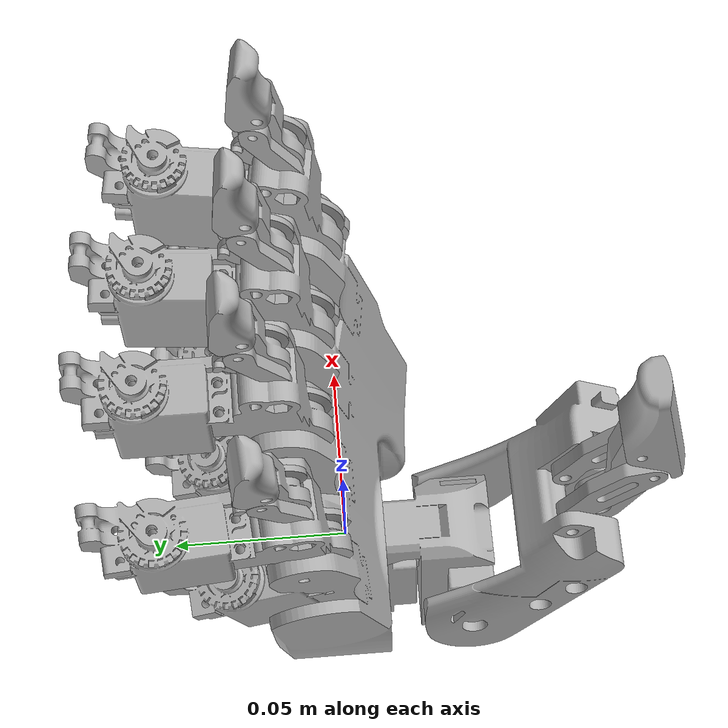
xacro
<?xml version="1.0" ?>
<robot name="urdf_v2_multibody" xmlns:xacro="http://www.ros.org/wiki/xacro">

<xacro:include filename="$(find urdf_v2_multibody_description)/urdf/materials.xacro" />
<xacro:include filename="$(find urdf_v2_multibody_description)/urdf/urdf_v2_multibody.trans" />
<xacro:include filename="$(find urdf_v2_multibody_description)/urdf/urdf_v2_multibody.gazebo" />
<link name="base_link">
  <inertial>
    <origin xyz="0.0016474099562521773 0.007710038643379074 0.06569064223044598" rpy="0 0 0"/>
    <mass value="0.3255498695984158"/>
    <inertia ixx="0.000354" iyy="0.000561" izz="0.000292" ixy="1.4e-05" iyz="-6.1e-05" ixz="1.6e-05"/>
  </inertial>
  <visual>
    <origin xyz="0 0 0" rpy="0 0 0"/>
    <geometry>
      <mesh filename="package://urdf_v2_multibody_description/meshes/base_link.stl" scale="0.001 0.001 0.001"/>
    </geometry>
    <material name="silver"/>
  </visual>
  <collision>
    <origin xyz="0 0 0" rpy="0 0 0"/>
    <geometry>
      <mesh filename="package://urdf_v2_multibody_description/meshes/base_link.stl" scale="0.001 0.001 0.001"/>
    </geometry>
  </collision>
</link>

<link name="Component18_1">
  <inertial>
    <origin xyz="0.00205644773644063 -0.035759461366122305 0.0009377444804476651" rpy="0 0 0"/>
    <mass value="0.03275756090109329"/>
    <inertia ixx="1.2e-05" iyy="6e-06" izz="1e-05" ixy="0.0" iyz="-2e-06" ixz="-0.0"/>
  </inertial>
  <visual>
    <origin xyz="0.02 -0.01402 -0.037074" rpy="0 0 0"/>
    <geometry>
      <mesh filename="package://urdf_v2_multibody_description/meshes/Component18_1.stl" scale="0.001 0.001 0.001"/>
    </geometry>
    <material name="silver"/>
  </visual>
  <collision>
    <origin xyz="0.02 -0.01402 -0.037074" rpy="0 0 0"/>
    <geometry>
      <mesh filename="package://urdf_v2_multibody_description/meshes/Component18_1.stl" scale="0.001 0.001 0.001"/>
    </geometry>
  </collision>
</link>

<link name="Component19_1">
  <inertial>
    <origin xyz="0.021021842981152637 -0.02024905051578764 0.013915914353245067" rpy="0 0 0"/>
    <mass value="0.042376196509499364"/>
    <inertia ixx="1.3e-05" iyy="1.8e-05" izz="1.8e-05" ixy="3e-06" iyz="5e-06" ixz="-1e-06"/>
  </inertial>
  <visual>
    <origin xyz="0.033236 0.03308 -0.039408" rpy="0 0 0"/>
    <geometry>
      <mesh filename="package://urdf_v2_multibody_description/meshes/Component19_1.stl" scale="0.001 0.001 0.001"/>
    </geometry>
    <material name="silver"/>
  </visual>
  <collision>
    <origin xyz="0.033236 0.03308 -0.039408" rpy="0 0 0"/>
    <geometry>
      <mesh filename="package://urdf_v2_multibody_description/meshes/Component19_1.stl" scale="0.001 0.001 0.001"/>
    </geometry>
  </collision>
</link>

<link name="Component20_1">
  <inertial>
    <origin xyz="0.003972829402101651 -0.010128401948321923 0.00957536831503221" rpy="0 0 0"/>
    <mass value="0.0012538487228303686"/>
    <inertia ixx="1e-06" iyy="1e-06" izz="1e-06" ixy="0.0" iyz="0.0" ixz="-0.0"/>
  </inertial>
  <visual>
    <origin xyz="0.022933 0.059187 -0.072095" rpy="0 0 0"/>
    <geometry>
      <mesh filename="package://urdf_v2_multibody_description/meshes/Component20_1.stl" scale="0.001 0.001 0.001"/>
    </geometry>
    <material name="silver"/>
  </visual>
  <collision>
    <origin xyz="0.022933 0.059187 -0.072095" rpy="0 0 0"/>
    <geometry>
      <mesh filename="package://urdf_v2_multibody_description/meshes/Component20_1.stl" scale="0.001 0.001 0.001"/>
    </geometry>
  </collision>
</link>

<link name="Component22_1">
  <inertial>
    <origin xyz="-0.00043298154854211086 -0.01032217531305036 0.010789839877586305" rpy="0 0 0"/>
    <mass value="0.0011896726478674796"/>
    <inertia ixx="1e-06" iyy="1e-06" izz="1e-06" ixy="0.0" iyz="0.0" ixz="-0.0"/>
  </inertial>
  <visual>
    <origin xyz="0.006812 0.059187 -0.069252" rpy="0 0 0"/>
    <geometry>
      <mesh filename="package://urdf_v2_multibody_description/meshes/Component22_1.stl" scale="0.001 0.001 0.001"/>
    </geometry>
    <material name="silver"/>
  </visual>
  <collision>
    <origin xyz="0.006812 0.059187 -0.069252" rpy="0 0 0"/>
    <geometry>
      <mesh filename="package://urdf_v2_multibody_description/meshes/Component22_1.stl" scale="0.001 0.001 0.001"/>
    </geometry>
  </collision>
</link>

<link name="Component16_1">
  <inertial>
    <origin xyz="-0.008061059676977358 0.01638074973575073 0.017589685642908456" rpy="0 0 0"/>
    <mass value="0.026790037080618938"/>
    <inertia ixx="1e-05" iyy="4e-06" izz="7e-06" ixy="1e-06" iyz="-1e-06" ixz="0.0"/>
  </inertial>
  <visual>
    <origin xyz="0.03462 -0.01249 -0.124159" rpy="0 0 0"/>
    <geometry>
      <mesh filename="package://urdf_v2_multibody_description/meshes/Component16_1.stl" scale="0.001 0.001 0.001"/>
    </geometry>
    <material name="silver"/>
  </visual>
  <collision>
    <origin xyz="0.03462 -0.01249 -0.124159" rpy="0 0 0"/>
    <geometry>
      <mesh filename="package://urdf_v2_multibody_description/meshes/Component16_1.stl" scale="0.001 0.001 0.001"/>
    </geometry>
  </collision>
</link>

<link name="Component2_1">
  <inertial>
    <origin xyz="0.000462619542790553 0.004461726896375182 0.010938978748813583" rpy="0 0 0"/>
    <mass value="0.0005553551164993653"/>
    <inertia ixx="1e-06" iyy="1e-06" izz="1e-06" ixy="0.0" iyz="-0.0" ixz="0.0"/>
  </inertial>
  <visual>
    <origin xyz="0.047401 -0.011385 -0.160863" rpy="0 0 0"/>
    <geometry>
      <mesh filename="package://urdf_v2_multibody_description/meshes/Component2_1.stl" scale="0.001 0.001 0.001"/>
    </geometry>
    <material name="silver"/>
  </visual>
  <collision>
    <origin xyz="0.047401 -0.011385 -0.160863" rpy="0 0 0"/>
    <geometry>
      <mesh filename="package://urdf_v2_multibody_description/meshes/Component2_1.stl" scale="0.001 0.001 0.001"/>
    </geometry>
  </collision>
</link>

<link name="Component3_1">
  <inertial>
    <origin xyz="-0.0044275618766101005 -0.000971590077156876 0.0044567427901544" rpy="0 0 0"/>
    <mass value="0.0021016630700529814"/>
    <inertia ixx="1e-06" iyy="1e-06" izz="1e-06" ixy="-0.0" iyz="-0.0" ixz="0.0"/>
  </inertial>
  <visual>
    <origin xyz="0.03578 -0.017984 -0.163813" rpy="0 0 0"/>
    <geometry>
      <mesh filename="package://urdf_v2_multibody_description/meshes/Component3_1.stl" scale="0.001 0.001 0.001"/>
    </geometry>
    <material name="silver"/>
  </visual>
  <collision>
    <origin xyz="0.03578 -0.017984 -0.163813" rpy="0 0 0"/>
    <geometry>
      <mesh filename="package://urdf_v2_multibody_description/meshes/Component3_1.stl" scale="0.001 0.001 0.001"/>
    </geometry>
  </collision>
</link>

<link name="Component1_1">
  <inertial>
    <origin xyz="-0.0026582242355176547 0.0027212087586729085 0.005344973967817412" rpy="0 0 0"/>
    <mass value="0.0023320871491061606"/>
    <inertia ixx="1e-06" iyy="1e-06" izz="1e-06" ixy="-0.0" iyz="-0.0" ixz="0.0"/>
  </inertial>
  <visual>
    <origin xyz="0.042678 -0.018402 -0.188385" rpy="0 0 0"/>
    <geometry>
      <mesh filename="package://urdf_v2_multibody_description/meshes/Component1_1.stl" scale="0.001 0.001 0.001"/>
    </geometry>
    <material name="silver"/>
  </visual>
  <collision>
    <origin xyz="0.042678 -0.018402 -0.188385" rpy="0 0 0"/>
    <geometry>
      <mesh filename="package://urdf_v2_multibody_description/meshes/Component1_1.stl" scale="0.001 0.001 0.001"/>
    </geometry>
  </collision>
</link>

<link name="Component15_1">
  <inertial>
    <origin xyz="-0.005463065418136619 0.01698982682823835 0.018005199450024434" rpy="0 0 0"/>
    <mass value="0.02679000292225181"/>
    <inertia ixx="1e-05" iyy="4e-06" izz="7e-06" ixy="-0.0" iyz="-1e-06" ixz="0.0"/>
  </inertial>
  <visual>
    <origin xyz="0.005159 -0.014269 -0.128417" rpy="0 0 0"/>
    <geometry>
      <mesh filename="package://urdf_v2_multibody_description/meshes/Component15_1.stl" scale="0.001 0.001 0.001"/>
    </geometry>
    <material name="silver"/>
  </visual>
  <collision>
    <origin xyz="0.005159 -0.014269 -0.128417" rpy="0 0 0"/>
    <geometry>
      <mesh filename="package://urdf_v2_multibody_description/meshes/Component15_1.stl" scale="0.001 0.001 0.001"/>
    </geometry>
  </collision>
</link>

<link name="Component5_1">
  <inertial>
    <origin xyz="0.0015734159091422076 0.004407373831162737 0.010857840276740471" rpy="0 0 0"/>
    <mass value="0.0005553551430431107"/>
    <inertia ixx="1e-06" iyy="1e-06" izz="1e-06" ixy="-0.0" iyz="-0.0" ixz="-0.0"/>
  </inertial>
  <visual>
    <origin xyz="0.015459 -0.014222 -0.165909" rpy="0 0 0"/>
    <geometry>
      <mesh filename="package://urdf_v2_multibody_description/meshes/Component5_1.stl" scale="0.001 0.001 0.001"/>
    </geometry>
    <material name="silver"/>
  </visual>
  <collision>
    <origin xyz="0.015459 -0.014222 -0.165909" rpy="0 0 0"/>
    <geometry>
      <mesh filename="package://urdf_v2_multibody_description/meshes/Component5_1.stl" scale="0.001 0.001 0.001"/>
    </geometry>
  </collision>
</link>

<link name="Component6_1">
  <inertial>
    <origin xyz="-0.0041785915393025876 -0.0006012877139288213 0.004751629271805224" rpy="0 0 0"/>
    <mass value="0.002101669059174703"/>
    <inertia ixx="1e-06" iyy="1e-06" izz="1e-06" ixy="-0.0" iyz="-0.0" ixz="0.0"/>
  </inertial>
  <visual>
    <origin xyz="0.003159 -0.019835 -0.168028" rpy="0 0 0"/>
    <geometry>
      <mesh filename="package://urdf_v2_multibody_description/meshes/Component6_1.stl" scale="0.001 0.001 0.001"/>
    </geometry>
    <material name="silver"/>
  </visual>
  <collision>
    <origin xyz="0.003159 -0.019835 -0.168028" rpy="0 0 0"/>
    <geometry>
      <mesh filename="package://urdf_v2_multibody_description/meshes/Component6_1.stl" scale="0.001 0.001 0.001"/>
    </geometry>
  </collision>
</link>

<link name="Component4_1">
  <inertial>
    <origin xyz="-0.0020546045533408365 0.0029308123988471546 0.005498001974026695" rpy="0 0 0"/>
    <mass value="0.0023320867681196383"/>
    <inertia ixx="1e-06" iyy="1e-06" izz="1e-06" ixy="-0.0" iyz="-0.0" ixz="0.0"/>
  </inertial>
  <visual>
    <origin xyz="0.008309 -0.020822 -0.193008" rpy="0 0 0"/>
    <geometry>
      <mesh filename="package://urdf_v2_multibody_description/meshes/Component4_1.stl" scale="0.001 0.001 0.001"/>
    </geometry>
    <material name="silver"/>
  </visual>
  <collision>
    <origin xyz="0.008309 -0.020822 -0.193008" rpy="0 0 0"/>
    <geometry>
      <mesh filename="package://urdf_v2_multibody_description/meshes/Component4_1.stl" scale="0.001 0.001 0.001"/>
    </geometry>
  </collision>
</link>

<link name="Component14_1">
  <inertial>
    <origin xyz="-0.0035728008524559055 0.017295185376205936 0.01818852649456365" rpy="0 0 0"/>
    <mass value="0.02679000914411339"/>
    <inertia ixx="1e-05" iyy="4e-06" izz="7e-06" ixy="-0.0" iyz="-1e-06" ixz="-0.0"/>
  </inertial>
  <visual>
    <origin xyz="-0.022579 -0.011528 -0.123529" rpy="0 0 0"/>
    <geometry>
      <mesh filename="package://urdf_v2_multibody_description/meshes/Component14_1.stl" scale="0.001 0.001 0.001"/>
    </geometry>
    <material name="silver"/>
  </visual>
  <collision>
    <origin xyz="-0.022579 -0.011528 -0.123529" rpy="0 0 0"/>
    <geometry>
      <mesh filename="package://urdf_v2_multibody_description/meshes/Component14_1.stl" scale="0.001 0.001 0.001"/>
    </geometry>
  </collision>
</link>

<link name="Component8_1">
  <inertial>
    <origin xyz="0.0022660902701839673 0.004247944743438965 0.010798878217404856" rpy="0 0 0"/>
    <mass value="0.0005553551406909223"/>
    <inertia ixx="1e-06" iyy="1e-06" izz="1e-06" ixy="-0.0" iyz="-0.0" ixz="-0.0"/>
  </inertial>
  <visual>
    <origin xyz="-0.013595 -0.012133 -0.161353" rpy="0 0 0"/>
    <geometry>
      <mesh filename="package://urdf_v2_multibody_description/meshes/Component8_1.stl" scale="0.001 0.001 0.001"/>
    </geometry>
    <material name="silver"/>
  </visual>
  <collision>
    <origin xyz="-0.013595 -0.012133 -0.161353" rpy="0 0 0"/>
    <geometry>
      <mesh filename="package://urdf_v2_multibody_description/meshes/Component8_1.stl" scale="0.001 0.001 0.001"/>
    </geometry>
  </collision>
</link>

<link name="Component9_1">
  <inertial>
    <origin xyz="-0.004046730722172282 -0.0003050468333951374 0.004892954568871927" rpy="0 0 0"/>
    <mass value="0.0021016711275410986"/>
    <inertia ixx="1e-06" iyy="1e-06" izz="1e-06" ixy="-0.0" iyz="-0.0" ixz="0.0"/>
  </inertial>
  <visual>
    <origin xyz="-0.026342 -0.016817 -0.163049" rpy="0 0 0"/>
    <geometry>
      <mesh filename="package://urdf_v2_multibody_description/meshes/Component9_1.stl" scale="0.001 0.001 0.001"/>
    </geometry>
    <material name="silver"/>
  </visual>
  <collision>
    <origin xyz="-0.026342 -0.016817 -0.163049" rpy="0 0 0"/>
    <geometry>
      <mesh filename="package://urdf_v2_multibody_description/meshes/Component9_1.stl" scale="0.001 0.001 0.001"/>
    </geometry>
  </collision>
</link>

<link name="Component7_1">
  <inertial>
    <origin xyz="-0.0016428683551376264 0.003059307568523375 0.005565856831441507" rpy="0 0 0"/>
    <mass value="0.0023320866187907683"/>
    <inertia ixx="1e-06" iyy="1e-06" izz="1e-06" ixy="-0.0" iyz="-0.0" ixz="-0.0"/>
  </inertial>
  <visual>
    <origin xyz="-0.022138 -0.018108 -0.188193" rpy="0 0 0"/>
    <geometry>
      <mesh filename="package://urdf_v2_multibody_description/meshes/Component7_1.stl" scale="0.001 0.001 0.001"/>
    </geometry>
    <material name="silver"/>
  </visual>
  <collision>
    <origin xyz="-0.022138 -0.018108 -0.188193" rpy="0 0 0"/>
    <geometry>
      <mesh filename="package://urdf_v2_multibody_description/meshes/Component7_1.stl" scale="0.001 0.001 0.001"/>
    </geometry>
  </collision>
</link>

<link name="Component13_1">
  <inertial>
    <origin xyz="-0.002049933296362494 0.017429881103642297 0.018294716371398123" rpy="0 0 0"/>
    <mass value="0.02679001911715537"/>
    <inertia ixx="1e-05" iyy="4e-06" izz="7e-06" ixy="-1e-06" iyz="-1e-06" ixz="-0.0"/>
  </inertial>
  <visual>
    <origin xyz="-0.049324 -0.007088 -0.11917" rpy="0 0 0"/>
    <geometry>
      <mesh filename="package://urdf_v2_multibody_description/meshes/Component13_1.stl" scale="0.001 0.001 0.001"/>
    </geometry>
    <material name="silver"/>
  </visual>
  <collision>
    <origin xyz="-0.049324 -0.007088 -0.11917" rpy="0 0 0"/>
    <geometry>
      <mesh filename="package://urdf_v2_multibody_description/meshes/Component13_1.stl" scale="0.001 0.001 0.001"/>
    </geometry>
  </collision>
</link>

<link name="Component11_1">
  <inertial>
    <origin xyz="0.002740843490757504 0.004038780957964982 0.010768195077672599" rpy="0 0 0"/>
    <mass value="0.0005553551410640018"/>
    <inertia ixx="1e-06" iyy="1e-06" izz="1e-06" ixy="-0.0" iyz="-0.0" ixz="-0.0"/>
  </inertial>
  <visual>
    <origin xyz="-0.041059 -0.008167 -0.157148" rpy="0 0 0"/>
    <geometry>
      <mesh filename="package://urdf_v2_multibody_description/meshes/Component11_1.stl" scale="0.001 0.001 0.001"/>
    </geometry>
    <material name="silver"/>
  </visual>
  <collision>
    <origin xyz="-0.041059 -0.008167 -0.157148" rpy="0 0 0"/>
    <geometry>
      <mesh filename="package://urdf_v2_multibody_description/meshes/Component11_1.stl" scale="0.001 0.001 0.001"/>
    </geometry>
  </collision>
</link>

<link name="Component12_1">
  <inertial>
    <origin xyz="-0.003973041781286907 -4.3016508907735285e-05 0.004961706458172815" rpy="0 0 0"/>
    <mass value="0.0021016702819412415"/>
    <inertia ixx="1e-06" iyy="1e-06" izz="1e-06" ixy="-0.0" iyz="-0.0" ixz="0.0"/>
  </inertial>
  <visual>
    <origin xyz="-0.054127 -0.01195 -0.158633" rpy="0 0 0"/>
    <geometry>
      <mesh filename="package://urdf_v2_multibody_description/meshes/Component12_1.stl" scale="0.001 0.001 0.001"/>
    </geometry>
    <material name="silver"/>
  </visual>
  <collision>
    <origin xyz="-0.054127 -0.01195 -0.158633" rpy="0 0 0"/>
    <geometry>
      <mesh filename="package://urdf_v2_multibody_description/meshes/Component12_1.stl" scale="0.001 0.001 0.001"/>
    </geometry>
  </collision>
</link>

<link name="Component10_1">
  <inertial>
    <origin xyz="-0.001329941857305783 0.0031439499294652062 0.0056024454838968785" rpy="0 0 0"/>
    <mass value="0.002332084411196724"/>
    <inertia ixx="1e-06" iyy="1e-06" izz="1e-06" ixy="-0.0" iyz="-0.0" ixz="-0.0"/>
  </inertial>
  <visual>
    <origin xyz="-0.050457 -0.013432 -0.183849" rpy="0 0 0"/>
    <geometry>
      <mesh filename="package://urdf_v2_multibody_description/meshes/Component10_1.stl" scale="0.001 0.001 0.001"/>
    </geometry>
    <material name="silver"/>
  </visual>
  <collision>
    <origin xyz="-0.050457 -0.013432 -0.183849" rpy="0 0 0"/>
    <geometry>
      <mesh filename="package://urdf_v2_multibody_description/meshes/Component10_1.stl" scale="0.001 0.001 0.001"/>
    </geometry>
  </collision>
</link>

<link name="Component23_1">
  <inertial>
    <origin xyz="0.004541743217539468 -0.004056734461939715 0.005830169025415957" rpy="0 0 0"/>
    <mass value="0.0073040788363279594"/>
    <inertia ixx="1e-06" iyy="1e-06" izz="1e-06" ixy="-0.0" iyz="-0.0" ixz="-0.0"/>
  </inertial>
  <visual>
    <origin xyz="0.013133 0.076179 -0.100323" rpy="0 0 0"/>
    <geometry>
      <mesh filename="package://urdf_v2_multibody_description/meshes/Component23_1.stl" scale="0.001 0.001 0.001"/>
    </geometry>
    <material name="silver"/>
  </visual>
  <collision>
    <origin xyz="0.013133 0.076179 -0.100323" rpy="0 0 0"/>
    <geometry>
      <mesh filename="package://urdf_v2_multibody_description/meshes/Component23_1.stl" scale="0.001 0.001 0.001"/>
    </geometry>
  </collision>
</link>

<link name="Component21_1">
  <inertial>
    <origin xyz="-0.0015985672667333632 -0.004774657558050885 0.015663746218625096" rpy="0 0 0"/>
    <mass value="0.00335897879504557"/>
    <inertia ixx="1e-06" iyy="1e-06" izz="1e-06" ixy="0.0" iyz="0.0" ixz="-0.0"/>
  </inertial>
  <visual>
    <origin xyz="0.011474 0.067999 -0.065274" rpy="0 0 0"/>
    <geometry>
      <mesh filename="package://urdf_v2_multibody_description/meshes/Component21_1.stl" scale="0.001 0.001 0.001"/>
    </geometry>
    <material name="silver"/>
  </visual>
  <collision>
    <origin xyz="0.011474 0.067999 -0.065274" rpy="0 0 0"/>
    <geometry>
      <mesh filename="package://urdf_v2_multibody_description/meshes/Component21_1.stl" scale="0.001 0.001 0.001"/>
    </geometry>
  </collision>
</link>

<joint name="Revolute 7" type="revolute">
  <origin xyz="-0.02 0.01402 0.037074" rpy="0 0 0"/>
  <parent link="base_link"/>
  <child link="Component18_1"/>
  <axis xyz="-0.0 1.0 0.0"/>
  <limit upper="0.698132" lower="-0.698132" effort="100" velocity="100"/>
</joint>

<joint name="Revolute 8" type="revolute">
  <origin xyz="-0.013236 -0.0471 0.002334" rpy="0 0 0"/>
  <parent link="Component18_1"/>
  <child link="Component19_1"/>
  <axis xyz="0.984808 0.0 -0.173648"/>
  <limit upper="1.047198" lower="-0.698132" effort="100" velocity="100"/>
</joint>

<joint name="Revolute 9" type="revolute">
  <origin xyz="0.010303 -0.026107 0.032687" rpy="0 0 0"/>
  <parent link="Component19_1"/>
  <child link="Component20_1"/>
  <axis xyz="0.984808 0.0 -0.173648"/>
  <limit upper="0.0" lower="-1.745329" effort="100" velocity="100"/>
</joint>

<joint name="Revolute 10" type="revolute">
  <origin xyz="0.026424 -0.026107 0.029844" rpy="0 0 0"/>
  <parent link="Component19_1"/>
  <child link="Component22_1"/>
  <axis xyz="-0.984808 -0.0 0.173648"/>
  <limit upper="1.745329" lower="0.0" effort="100" velocity="100"/>
</joint>

<joint name="Revolute 12" type="revolute">
  <origin xyz="-0.03462 0.01249 0.124159" rpy="0 0 0"/>
  <parent link="base_link"/>
  <child link="Component16_1"/>
  <axis xyz="0.994249 0.082669 0.068079"/>
  <limit upper="1.745329" lower="0.0" effort="100" velocity="100"/>
</joint>

<joint name="Revolute 13" type="revolute">
  <origin xyz="-0.012781 -0.001105 0.036704" rpy="0 0 0"/>
  <parent link="Component16_1"/>
  <child link="Component2_1"/>
  <axis xyz="-0.994249 -0.082669 -0.068079"/>
  <limit upper="0.0" lower="-2.268928" effort="100" velocity="100"/>
</joint>

<joint name="Revolute 14" type="revolute">
  <origin xyz="-0.00116 0.005494 0.039654" rpy="0 0 0"/>
  <parent link="Component16_1"/>
  <child link="Component3_1"/>
  <axis xyz="0.994249 0.082669 0.068079"/>
  <limit upper="1.745329" lower="0.0" effort="100" velocity="100"/>
</joint>

<joint name="Revolute 15" type="revolute">
  <origin xyz="-0.006898 0.000418 0.024572" rpy="0 0 0"/>
  <parent link="Component3_1"/>
  <child link="Component1_1"/>
  <axis xyz="-0.994249 -0.082669 -0.068079"/>
  <limit upper="0.0" lower="-1.396263" effort="100" velocity="100"/>
</joint>

<joint name="Revolute 16" type="revolute">
  <origin xyz="-0.005159 0.014269 0.128417" rpy="0 0 0"/>
  <parent link="base_link"/>
  <child link="Component15_1"/>
  <axis xyz="1.0 0.0 0.0"/>
  <limit upper="1.745329" lower="0.0" effort="100" velocity="100"/>
</joint>

<joint name="Revolute 17" type="revolute">
  <origin xyz="-0.0103 -4.7e-05 0.037492" rpy="0 0 0"/>
  <parent link="Component15_1"/>
  <child link="Component5_1"/>
  <axis xyz="-1.0 -0.0 -0.0"/>
  <limit upper="0.0" lower="-2.268928" effort="100" velocity="100"/>
</joint>

<joint name="Revolute 18" type="revolute">
  <origin xyz="0.002 0.005566 0.039611" rpy="0 0 0"/>
  <parent link="Component15_1"/>
  <child link="Component6_1"/>
  <axis xyz="1.0 0.0 0.0"/>
  <limit upper="1.745329" lower="0.0" effort="100" velocity="100"/>
</joint>

<joint name="Revolute 19" type="revolute">
  <origin xyz="-0.00515 0.000987 0.02498" rpy="0 0 0"/>
  <parent link="Component6_1"/>
  <child link="Component4_1"/>
  <axis xyz="-1.0 -0.0 -0.0"/>
  <limit upper="0.0" lower="-1.396263" effort="100" velocity="100"/>
</joint>

<joint name="Revolute 20" type="revolute">
  <origin xyz="0.022579 0.011528 0.123529" rpy="0 0 0"/>
  <parent link="base_link"/>
  <child link="Component14_1"/>
  <axis xyz="0.996679 -0.073804 -0.034407"/>
  <limit upper="1.745329" lower="0.0" effort="100" velocity="100"/>
</joint>

<joint name="Revolute 21" type="revolute">
  <origin xyz="-0.008984 0.000605 0.037824" rpy="0 0 0"/>
  <parent link="Component14_1"/>
  <child link="Component8_1"/>
  <axis xyz="-0.996679 0.073804 0.034407"/>
  <limit upper="0.0" lower="-2.268928" effort="100" velocity="100"/>
</joint>

<joint name="Revolute 22" type="revolute">
  <origin xyz="0.003763 0.005289 0.03952" rpy="0 0 0"/>
  <parent link="Component14_1"/>
  <child link="Component9_1"/>
  <axis xyz="0.996679 -0.073804 -0.034407"/>
  <limit upper="1.745329" lower="0.0" effort="100" velocity="100"/>
</joint>

<joint name="Revolute 23" type="revolute">
  <origin xyz="-0.004204 0.001291 0.025144" rpy="0 0 0"/>
  <parent link="Component9_1"/>
  <child link="Component7_1"/>
  <axis xyz="-0.996679 0.073804 0.034407"/>
  <limit upper="0.0" lower="-1.396263" effort="100" velocity="100"/>
</joint>

<joint name="Revolute 24" type="revolute">
  <origin xyz="0.049324 0.007088 0.11917" rpy="0 0 0"/>
  <parent link="base_link"/>
  <child link="Component13_1"/>
  <axis xyz="0.98842 -0.142545 -0.052035"/>
  <limit upper="1.745329" lower="0.0" effort="100" velocity="100"/>
</joint>

<joint name="Revolute 25" type="revolute">
  <origin xyz="-0.008265 0.001079 0.037978" rpy="0 0 0"/>
  <parent link="Component13_1"/>
  <child link="Component11_1"/>
  <axis xyz="-0.98842 0.142545 0.052035"/>
  <limit upper="0.0" lower="-2.268928" effort="100" velocity="100"/>
</joint>

<joint name="Revolute 26" type="revolute">
  <origin xyz="0.004803 0.004862 0.039463" rpy="0 0 0"/>
  <parent link="Component13_1"/>
  <child link="Component12_1"/>
  <axis xyz="0.98842 -0.142545 -0.052035"/>
  <limit upper="1.745329" lower="0.0" effort="100" velocity="100"/>
</joint>

<joint name="Revolute 27" type="revolute">
  <origin xyz="-0.00367 0.001482 0.025216" rpy="0 0 0"/>
  <parent link="Component12_1"/>
  <child link="Component10_1"/>
  <axis xyz="-0.98842 0.142545 0.052035"/>
  <limit upper="0.0" lower="-1.396263" effort="100" velocity="100"/>
</joint>

<joint name="Revolute 28" type="revolute">
  <origin xyz="-0.001659 -0.00818 0.035049" rpy="0 0 0"/>
  <parent link="Component21_1"/>
  <child link="Component23_1"/>
  <axis xyz="0.984808 0.0 -0.173648"/>
  <limit upper="0.0" lower="-1.047198" effort="100" velocity="100"/>
</joint>

<joint name="Revolute 29" type="revolute">
  <origin xyz="0.021762 -0.034919 0.025866" rpy="0 0 0"/>
  <parent link="Component19_1"/>
  <child link="Component21_1"/>
  <axis xyz="0.984808 0.0 -0.173648"/>
  <limit upper="0.0" lower="-1.047198" effort="100" velocity="100"/>
</joint>

</robot>

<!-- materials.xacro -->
<robot name="urdf_v2_multibody" xmlns:xacro="http://www.ros.org/wiki/xacro" >

<material name="silver">
  <color rgba="0.700 0.700 0.700 1.000"/>
</material>

</robot>

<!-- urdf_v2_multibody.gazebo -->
<robot name="urdf_v2_multibody" xmlns:xacro="http://www.ros.org/wiki/xacro" >

<xacro:property name="body_color" value="Gazebo/Silver" />

<gazebo>
  <plugin name="control" filename="libgazebo_ros_control.so"/>
</gazebo>
<gazebo reference="base_link">
  <material>${body_color}</material>
  <mu1>0.2</mu1>
  <mu2>0.2</mu2>
  <selfCollide>true</selfCollide>
  <gravity>true</gravity>
</gazebo>

<gazebo reference="Component18_1">
  <material>${body_color}</material>
  <mu1>0.2</mu1>
  <mu2>0.2</mu2>
  <selfCollide>true</selfCollide>
</gazebo>

<gazebo reference="Component19_1">
  <material>${body_color}</material>
  <mu1>0.2</mu1>
  <mu2>0.2</mu2>
  <selfCollide>true</selfCollide>
</gazebo>

<gazebo reference="Component20_1">
  <material>${body_color}</material>
  <mu1>0.2</mu1>
  <mu2>0.2</mu2>
  <selfCollide>true</selfCollide>
</gazebo>

<gazebo reference="Component22_1">
  <material>${body_color}</material>
  <mu1>0.2</mu1>
  <mu2>0.2</mu2>
  <selfCollide>true</selfCollide>
</gazebo>

<gazebo reference="Component16_1">
  <material>${body_color}</material>
  <mu1>0.2</mu1>
  <mu2>0.2</mu2>
  <selfCollide>true</selfCollide>
</gazebo>

<gazebo reference="Component2_1">
  <material>${body_color}</material>
  <mu1>0.2</mu1>
  <mu2>0.2</mu2>
  <selfCollide>true</selfCollide>
</gazebo>

<gazebo reference="Component3_1">
  <material>${body_color}</material>
  <mu1>0.2</mu1>
  <mu2>0.2</mu2>
  <selfCollide>true</selfCollide>
</gazebo>

<gazebo reference="Component1_1">
  <material>${body_color}</material>
  <mu1>0.2</mu1>
  <mu2>0.2</mu2>
  <selfCollide>true</selfCollide>
</gazebo>

<gazebo reference="Component15_1">
  <material>${body_color}</material>
  <mu1>0.2</mu1>
  <mu2>0.2</mu2>
  <selfCollide>true</selfCollide>
</gazebo>

<gazebo reference="Component5_1">
  <material>${body_color}</material>
  <mu1>0.2</mu1>
  <mu2>0.2</mu2>
  <selfCollide>true</selfCollide>
</gazebo>

<gazebo reference="Component6_1">
  <material>${body_color}</material>
  <mu1>0.2</mu1>
  <mu2>0.2</mu2>
  <selfCollide>true</selfCollide>
</gazebo>

<gazebo reference="Component4_1">
  <material>${body_color}</material>
  <mu1>0.2</mu1>
  <mu2>0.2</mu2>
  <selfCollide>true</selfCollide>
</gazebo>

<gazebo reference="Component14_1">
  <material>${body_color}</material>
  <mu1>0.2</mu1>
  <mu2>0.2</mu2>
  <selfCollide>true</selfCollide>
</gazebo>

<gazebo reference="Component8_1">
  <material>${body_color}</material>
  <mu1>0.2</mu1>
  <mu2>0.2</mu2>
  <selfCollide>true</selfCollide>
</gazebo>

<gazebo reference="Component9_1">
  <material>${body_color}</material>
  <mu1>0.2</mu1>
  <mu2>0.2</mu2>
  <selfCollide>true</selfCollide>
</gazebo>

<gazebo reference="Component7_1">
  <material>${body_color}</material>
  <mu1>0.2</mu1>
  <mu2>0.2</mu2>
  <selfCollide>true</selfCollide>
</gazebo>

<gazebo reference="Component13_1">
  <material>${body_color}</material>
  <mu1>0.2</mu1>
  <mu2>0.2</mu2>
  <selfCollide>true</selfCollide>
</gazebo>

<gazebo reference="Component11_1">
  <material>${body_color}</material>
  <mu1>0.2</mu1>
  <mu2>0.2</mu2>
  <selfCollide>true</selfCollide>
</gazebo>

<gazebo reference="Component12_1">
  <material>${body_color}</material>
  <mu1>0.2</mu1>
  <mu2>0.2</mu2>
  <selfCollide>true</selfCollide>
</gazebo>

<gazebo reference="Component10_1">
  <material>${body_color}</material>
  <mu1>0.2</mu1>
  <mu2>0.2</mu2>
  <selfCollide>true</selfCollide>
</gazebo>

<gazebo reference="Component23_1">
  <material>${body_color}</material>
  <mu1>0.2</mu1>
  <mu2>0.2</mu2>
  <selfCollide>true</selfCollide>
</gazebo>

<gazebo reference="Component21_1">
  <material>${body_color}</material>
  <mu1>0.2</mu1>
  <mu2>0.2</mu2>
  <selfCollide>true</selfCollide>
</gazebo>

</robot>
